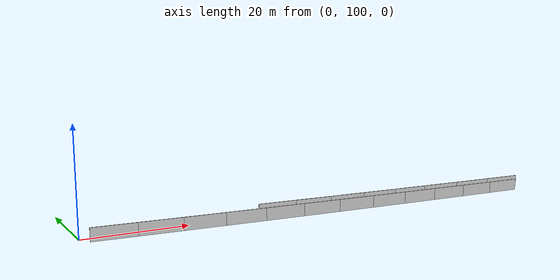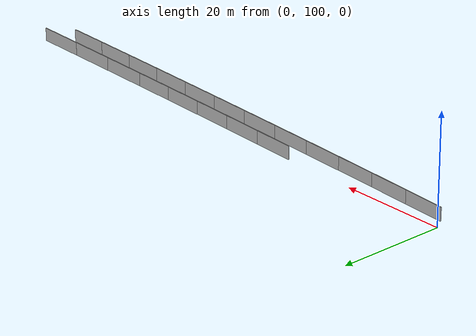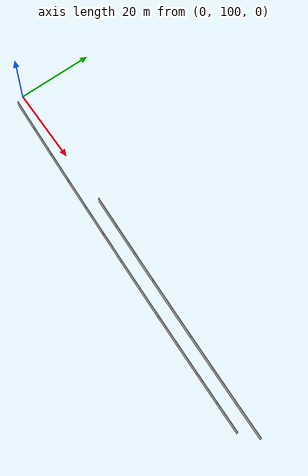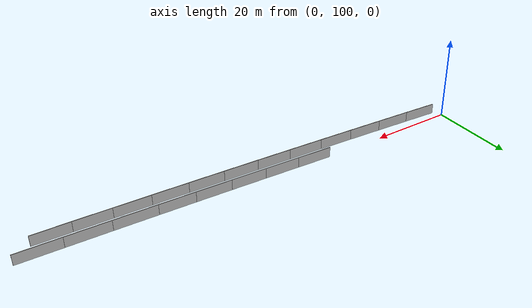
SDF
<?xml version="1.0" ?>
<sdf version="1.6">
  <model name="sps_2000">
    <pose frame="">0 0 0 0 -0 0</pose>
    <static>1</static>
    <self_collide>0</self_collide>
    <allow_auto_disable>0</allow_auto_disable>
    <link name="Wall4295">
      <kinematic>0</kinematic>
      <gravity>1</gravity>
      <self_collide>0</self_collide>
      <collision name="collision">
        <geometry>
          <box>
            <size>8.25182 0.15 2.5</size>
          </box>
        </geometry>
        <pose frame="">0 0 0 0 -0 0</pose>
      </collision>
      <visual name="visual">
        <geometry>
          <box>
            <size>8.25182 0.15 2.5</size>
          </box>
        </geometry>
        <pose frame="">0 0 0 0 -0 0</pose>
        <cast_shadows>1</cast_shadows>
        <transparency>0.0</transparency>
      </visual>
      <pose frame="">38.7486 99.614 1.25 0 0 -0.0483258</pose>
    </link>
    <link name="Wall4296">
      <kinematic>0</kinematic>
      <gravity>1</gravity>
      <self_collide>0</self_collide>
      <collision name="collision">
        <geometry>
          <box>
            <size>8.2517 0.15 2.5</size>
          </box>
        </geometry>
        <pose frame="">0 0 0 0 -0 0</pose>
      </collision>
      <visual name="visual">
        <geometry>
          <box>
            <size>8.2517 0.15 2.5</size>
          </box>
        </geometry>
        <pose frame="">0 0 0 0 -0 0</pose>
        <cast_shadows>1</cast_shadows>
        <transparency>0.0</transparency>
      </visual>
      <pose frame="">46.9911 99.2251 1.25 0 0 -0.0459717</pose>
    </link>
    <link name="Wall4297">
      <kinematic>0</kinematic>
      <gravity>1</gravity>
      <self_collide>0</self_collide>
      <collision name="collision">
        <geometry>
          <box>
            <size>8.25204 0.15 2.5</size>
          </box>
        </geometry>
        <pose frame="">0 0 0 0 -0 0</pose>
      </collision>
      <visual name="visual">
        <geometry>
          <box>
            <size>8.25204 0.15 2.5</size>
          </box>
        </geometry>
        <pose frame="">0 0 0 0 -0 0</pose>
        <cast_shadows>1</cast_shadows>
        <transparency>0.0</transparency>
      </visual>
      <pose frame="">55.2347 98.8557 1.25 0 0 -0.0435858</pose>
    </link>
    <link name="Wall4298">
      <kinematic>0</kinematic>
      <gravity>1</gravity>
      <self_collide>0</self_collide>
      <collision name="collision">
        <geometry>
          <box>
            <size>8.25202 0.15 2.5</size>
          </box>
        </geometry>
        <pose frame="">0 0 0 0 -0 0</pose>
      </collision>
      <visual name="visual">
        <geometry>
          <box>
            <size>8.25202 0.15 2.5</size>
          </box>
        </geometry>
        <pose frame="">0 0 0 0 -0 0</pose>
        <cast_shadows>1</cast_shadows>
        <transparency>0.0</transparency>
      </visual>
      <pose frame="">63.4793 98.5057 1.25 0 0 -0.0412688</pose>
    </link>
    <link name="Wall4299">
      <kinematic>0</kinematic>
      <gravity>1</gravity>
      <self_collide>0</self_collide>
      <collision name="collision">
        <geometry>
          <box>
            <size>8.25208 0.15 2.5</size>
          </box>
        </geometry>
        <pose frame="">0 0 0 0 -0 0</pose>
      </collision>
      <visual name="visual">
        <geometry>
          <box>
            <size>8.25208 0.15 2.5</size>
          </box>
        </geometry>
        <pose frame="">0 0 0 0 -0 0</pose>
        <cast_shadows>1</cast_shadows>
        <transparency>0.0</transparency>
      </visual>
      <pose frame="">71.7248 98.1752 1.25 0 0 -0.0388553</pose>
    </link>
    <link name="Wall4300">
      <kinematic>0</kinematic>
      <gravity>1</gravity>
      <self_collide>0</self_collide>
      <collision name="collision">
        <geometry>
          <box>
            <size>9.60582 0.15 2.5</size>
          </box>
        </geometry>
        <pose frame="">0 0 0 0 -0 0</pose>
      </collision>
      <visual name="visual">
        <geometry>
          <box>
            <size>9.60582 0.15 2.5</size>
          </box>
        </geometry>
        <pose frame="">0 0 0 0 -0 0</pose>
        <cast_shadows>1</cast_shadows>
        <transparency>0.0</transparency>
      </visual>
      <pose frame="">80.6475 97.8414 1.25 0 0 -0.0361302</pose>
    </link>
    <link name="Wall4301">
      <kinematic>0</kinematic>
      <gravity>1</gravity>
      <self_collide>0</self_collide>
      <collision name="collision">
        <geometry>
          <box>
            <size>9.6057 0.15 2.5</size>
          </box>
        </geometry>
        <pose frame="">0 0 0 0 -0 0</pose>
      </collision>
      <visual name="visual">
        <geometry>
          <box>
            <size>9.6057 0.15 2.5</size>
          </box>
        </geometry>
        <pose frame="">0 0 0 0 -0 0</pose>
        <cast_shadows>1</cast_shadows>
        <transparency>0.0</transparency>
      </visual>
      <pose frame="">90.2473 97.5057 1.25 0 0 -0.0337782</pose>
    </link>
    <link name="Wall4302">
      <kinematic>0</kinematic>
      <gravity>1</gravity>
      <self_collide>0</self_collide>
      <collision name="collision">
        <geometry>
          <box>
            <size>9.60593 0.15 2.5</size>
          </box>
        </geometry>
        <pose frame="">0 0 0 0 -0 0</pose>
      </collision>
      <visual name="visual">
        <geometry>
          <box>
            <size>9.60593 0.15 2.5</size>
          </box>
        </geometry>
        <pose frame="">0 0 0 0 -0 0</pose>
        <cast_shadows>1</cast_shadows>
        <transparency>0.0</transparency>
      </visual>
      <pose frame="">99.848 97.1927 1.25 0 0 -0.0314061</pose>
    </link>
    <link name="Wall9033">
      <kinematic>0</kinematic>
      <gravity>1</gravity>
      <self_collide>0</self_collide>
      <collision name="collision">
        <geometry>
          <box>
            <size>8.26179 0.15 2.5</size>
          </box>
        </geometry>
        <pose frame="">0 0 0 0 -0 0</pose>
      </collision>
      <visual name="visual">
        <geometry>
          <box>
            <size>8.26179 0.15 2.5</size>
          </box>
        </geometry>
        <pose frame="">0 0 0 0 -0 0</pose>
        <cast_shadows>1</cast_shadows>
        <transparency>0.0</transparency>
      </visual>
      <pose frame="">5.46484 97.6204 1.25 0 0 -0.0578183</pose>
    </link>
    <link name="Wall9034">
      <kinematic>0</kinematic>
      <gravity>1</gravity>
      <self_collide>0</self_collide>
      <collision name="collision">
        <geometry>
          <box>
            <size>8.2619 0.15 2.5</size>
          </box>
        </geometry>
        <pose frame="">0 0 0 0 -0 0</pose>
      </collision>
      <visual name="visual">
        <geometry>
          <box>
            <size>8.2619 0.15 2.5</size>
          </box>
        </geometry>
        <pose frame="">0 0 0 0 -0 0</pose>
        <cast_shadows>1</cast_shadows>
        <transparency>0.0</transparency>
      </visual>
      <pose frame="">13.7134 97.1528 1.25 0 0 -0.055435</pose>
    </link>
    <link name="Wall9035">
      <kinematic>0</kinematic>
      <gravity>1</gravity>
      <self_collide>0</self_collide>
      <collision name="collision">
        <geometry>
          <box>
            <size>8.26188 0.15 2.5</size>
          </box>
        </geometry>
        <pose frame="">0 0 0 0 -0 0</pose>
      </collision>
      <visual name="visual">
        <geometry>
          <box>
            <size>8.26188 0.15 2.5</size>
          </box>
        </geometry>
        <pose frame="">0 0 0 0 -0 0</pose>
        <cast_shadows>1</cast_shadows>
        <transparency>0.0</transparency>
      </visual>
      <pose frame="">21.9632 96.7047 1.25 0 0 -0.0530898</pose>
    </link>
    <link name="Wall9036">
      <kinematic>0</kinematic>
      <gravity>1</gravity>
      <self_collide>0</self_collide>
      <collision name="collision">
        <geometry>
          <box>
            <size>8.26179 0.15 2.5</size>
          </box>
        </geometry>
        <pose frame="">0 0 0 0 -0 0</pose>
      </collision>
      <visual name="visual">
        <geometry>
          <box>
            <size>8.26179 0.15 2.5</size>
          </box>
        </geometry>
        <pose frame="">0 0 0 0 -0 0</pose>
        <cast_shadows>1</cast_shadows>
        <transparency>0.0</transparency>
      </visual>
      <pose frame="">30.2139 96.276 1.25 0 0 -0.0507379</pose>
    </link>
    <link name="Wall9037">
      <kinematic>0</kinematic>
      <gravity>1</gravity>
      <self_collide>0</self_collide>
      <collision name="collision">
        <geometry>
          <box>
            <size>8.26167 0.15 2.5</size>
          </box>
        </geometry>
        <pose frame="">0 0 0 0 -0 0</pose>
      </collision>
      <visual name="visual">
        <geometry>
          <box>
            <size>8.26167 0.15 2.5</size>
          </box>
        </geometry>
        <pose frame="">0 0 0 0 -0 0</pose>
        <cast_shadows>1</cast_shadows>
        <transparency>0.0</transparency>
      </visual>
      <pose frame="">38.4654 95.8668 1.25 0 0 -0.0483643</pose>
    </link>
    <link name="Wall9038">
      <kinematic>0</kinematic>
      <gravity>1</gravity>
      <self_collide>0</self_collide>
      <collision name="collision">
        <geometry>
          <box>
            <size>8.26172 0.15 2.5</size>
          </box>
        </geometry>
        <pose frame="">0 0 0 0 -0 0</pose>
      </collision>
      <visual name="visual">
        <geometry>
          <box>
            <size>8.26172 0.15 2.5</size>
          </box>
        </geometry>
        <pose frame="">0 0 0 0 -0 0</pose>
        <cast_shadows>1</cast_shadows>
        <transparency>0.0</transparency>
      </visual>
      <pose frame="">46.7179 95.4772 1.25 0 0 -0.0459825</pose>
    </link>
    <link name="Wall9039">
      <kinematic>0</kinematic>
      <gravity>1</gravity>
      <self_collide>0</self_collide>
      <collision name="collision">
        <geometry>
          <box>
            <size>8.26208 0.15 2.5</size>
          </box>
        </geometry>
        <pose frame="">0 0 0 0 -0 0</pose>
      </collision>
      <visual name="visual">
        <geometry>
          <box>
            <size>8.26208 0.15 2.5</size>
          </box>
        </geometry>
        <pose frame="">0 0 0 0 -0 0</pose>
        <cast_shadows>1</cast_shadows>
        <transparency>0.0</transparency>
      </visual>
      <pose frame="">54.9715 95.1071 1.25 0 0 -0.0436364</pose>
    </link>
    <link name="Wall9040">
      <kinematic>0</kinematic>
      <gravity>1</gravity>
      <self_collide>0</self_collide>
      <collision name="collision">
        <geometry>
          <box>
            <size>8.26162 0.15 2.5</size>
          </box>
        </geometry>
        <pose frame="">0 0 0 0 -0 0</pose>
      </collision>
      <visual name="visual">
        <geometry>
          <box>
            <size>8.26162 0.15 2.5</size>
          </box>
        </geometry>
        <pose frame="">0 0 0 0 -0 0</pose>
        <cast_shadows>1</cast_shadows>
        <transparency>0.0</transparency>
      </visual>
      <pose frame="">63.2259 94.7564 1.25 0 0 -0.0412873</pose>
    </link>
    <link name="Wall9041">
      <kinematic>0</kinematic>
      <gravity>1</gravity>
      <self_collide>0</self_collide>
      <collision name="collision">
        <geometry>
          <box>
            <size>8.26187 0.15 2.5</size>
          </box>
        </geometry>
        <pose frame="">0 0 0 0 -0 0</pose>
      </collision>
      <visual name="visual">
        <geometry>
          <box>
            <size>8.26187 0.15 2.5</size>
          </box>
        </geometry>
        <pose frame="">0 0 0 0 -0 0</pose>
        <cast_shadows>1</cast_shadows>
        <transparency>0.0</transparency>
      </visual>
      <pose frame="">71.481 94.4252 1.25 0 0 -0.0389128</pose>
    </link>
    <link name="Wall9042">
      <kinematic>0</kinematic>
      <gravity>1</gravity>
      <self_collide>0</self_collide>
      <collision name="collision">
        <geometry>
          <box>
            <size>8.26191 0.15 2.5</size>
          </box>
        </geometry>
        <pose frame="">0 0 0 0 -0 0</pose>
      </collision>
      <visual name="visual">
        <geometry>
          <box>
            <size>8.26191 0.15 2.5</size>
          </box>
        </geometry>
        <pose frame="">0 0 0 0 -0 0</pose>
        <cast_shadows>1</cast_shadows>
        <transparency>0.0</transparency>
      </visual>
      <pose frame="">79.7371 94.1137 1.25 0 0 -0.0365099</pose>
    </link>
    <link name="Wall9043">
      <kinematic>0</kinematic>
      <gravity>1</gravity>
      <self_collide>0</self_collide>
      <collision name="collision">
        <geometry>
          <box>
            <size>8.26185 0.15 2.5</size>
          </box>
        </geometry>
        <pose frame="">0 0 0 0 -0 0</pose>
      </collision>
      <visual name="visual">
        <geometry>
          <box>
            <size>8.26185 0.15 2.5</size>
          </box>
        </geometry>
        <pose frame="">0 0 0 0 -0 0</pose>
        <cast_shadows>1</cast_shadows>
        <transparency>0.0</transparency>
      </visual>
      <pose frame="">87.9938 93.8217 1.25 0 0 -0.034189</pose>
    </link>
    <link name="Wall9044">
      <kinematic>0</kinematic>
      <gravity>1</gravity>
      <self_collide>0</self_collide>
      <collision name="collision">
        <geometry>
          <box>
            <size>8.26175 0.15 2.5</size>
          </box>
        </geometry>
        <pose frame="">0 0 0 0 -0 0</pose>
      </collision>
      <visual name="visual">
        <geometry>
          <box>
            <size>8.26175 0.15 2.5</size>
          </box>
        </geometry>
        <pose frame="">0 0 0 0 -0 0</pose>
        <cast_shadows>1</cast_shadows>
        <transparency>0.0</transparency>
      </visual>
      <pose frame="">96.2511 93.5491 1.25 0 0 -0.0318167</pose>
    </link>
  </model>
</sdf>
